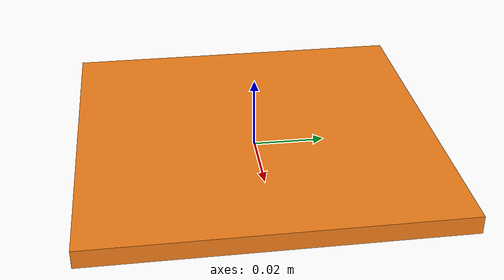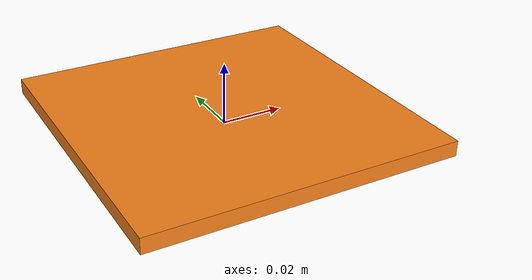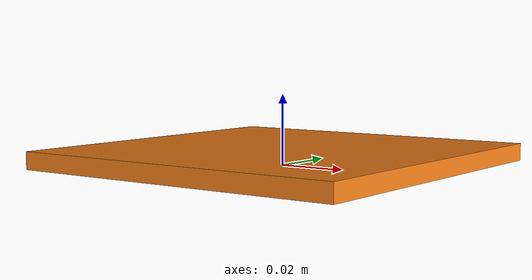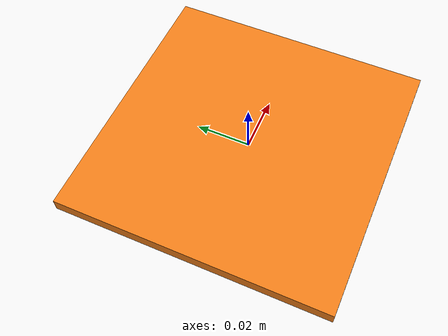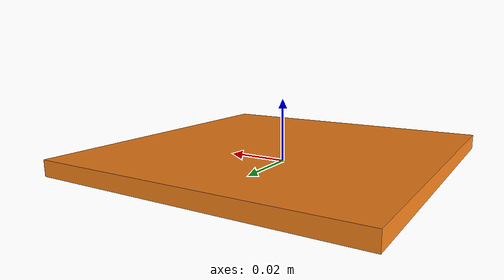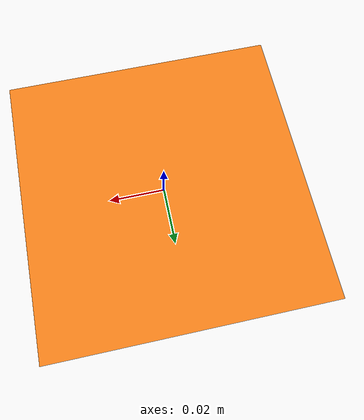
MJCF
<mujoco model="orange_pad">
  <worldbody>
    <body>
      <body name="object">
        <geom solimp="0.998 0.998 0.001" solref="0.001 1" friction="1.0 0.3 0.1" density="3000" type="box" pos="0 0 0.0025" size="0.0500 0.0500 0.0025" rgba="0.950 0.500 0.100 1.000" group="0"/>
        <geom type="box" pos="0 0 0.0025" size="0.0500 0.0500 0.0025" rgba="0.950 0.500 0.100 1.000" conaffinity="0" contype="0" group="1"/>
      </body>
      <site rgba="0 0 0 0" size="0.005" pos="0 0 0" name="bottom_site" />
      <site rgba="0 0 0 0" size="0.005" pos="0 0 0.0050" name="top_site" />
      <site rgba="0 0 0 0" size="0.005" pos="0.0500 0.0500 0" name="horizontal_radius_site" />
    </body>
  </worldbody>
</mujoco>
